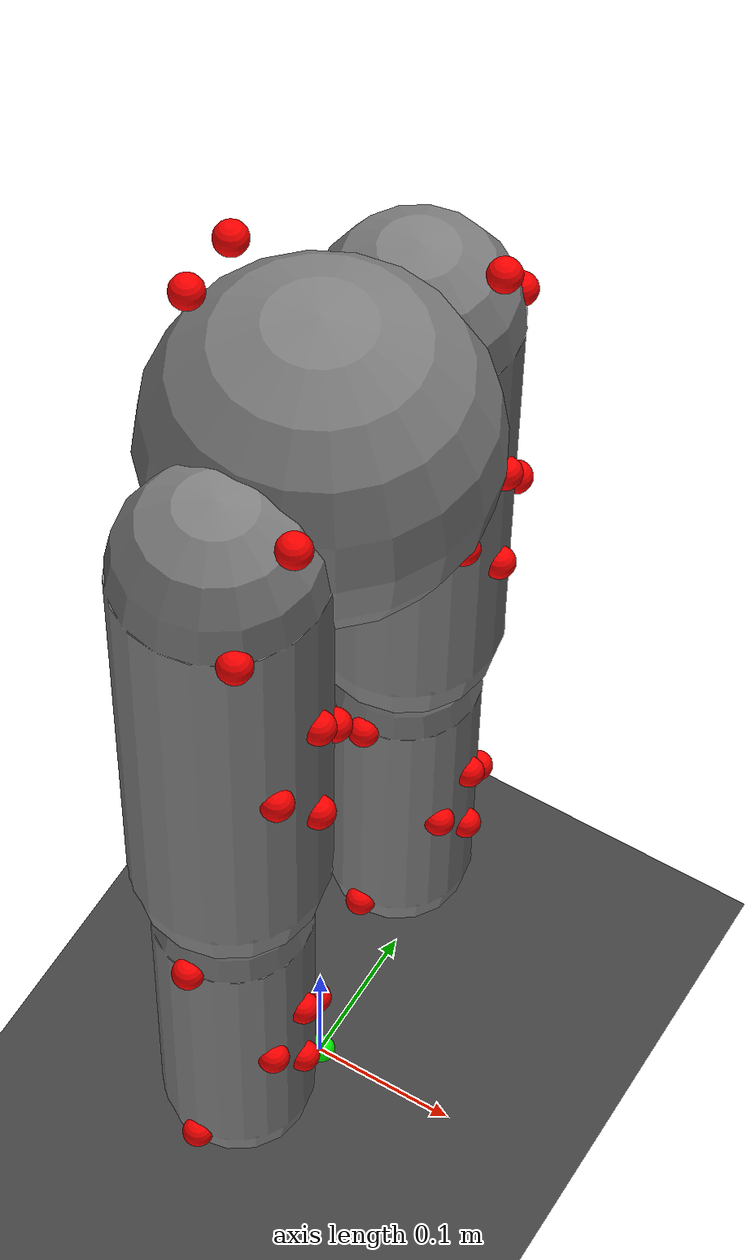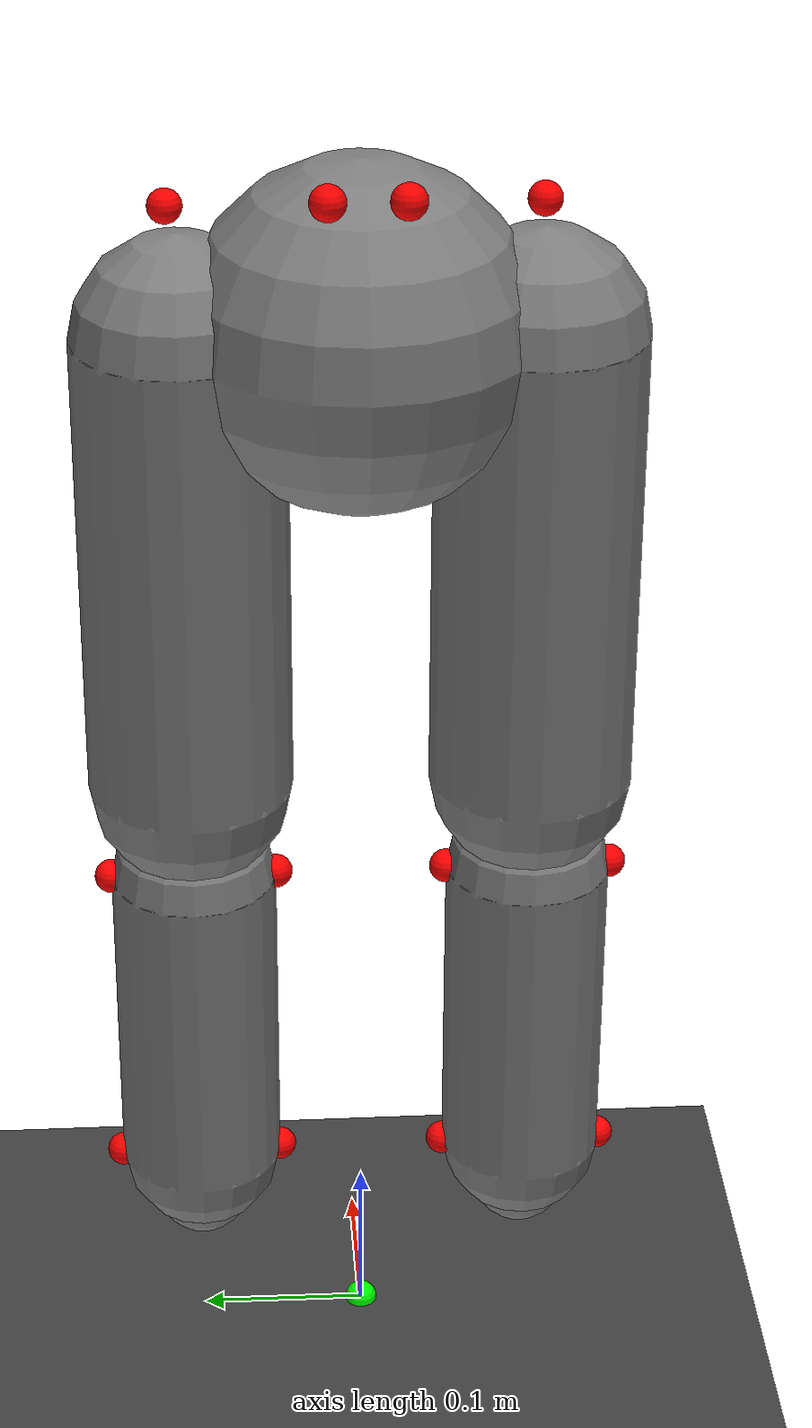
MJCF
<mujoco model="pm_mll">
  <compiler settotalmass="50.0"/>
  <default>
    <default class="/"/>
    <default class="left_leg/"/>
    <default class="right_leg/"/>
  </default>
  <asset>
    <texture name="texplane" type="2d" builtin="checker" rgb1="0.20000000000000001 0.20000000000000001 0.20000000000000001" rgb2="0.29999999999999999 0.29999999999999999 0.29999999999999999" width="512" height="512"/>
    <material name="grid" class="/" texture="texplane" texrepeat="1 1" texuniform="true" reflectance="0.0"/>
  </asset>
  <worldbody>
    <geom name="floor" class="/" type="plane" conaffinity="1" size="100 100 0.20000000000000001" material="grid" pos="0 0 0"/>
    <body name="torso" pos="0 0 0.67100000000000004">
      <light name="top" class="/" mode="trackcom" pos="0 0 2"/>
      <camera name="back" class="/" mode="trackcom" pos="-3 0 1" xyaxes="0 -1 0 1 0 2"/>
      <camera name="side" class="/" mode="trackcom" pos="0 -3 1" xyaxes="1 0 0 0 1 2"/>
      <freejoint name="root"/>
      <geom name="head" class="/" type="sphere" size="0.10000000000000001" pos="0 0 0"/>
      <site name="com" class="/" type="sphere" rgba="1 0 0 1" size="0.01" pos="0 0 0"/>
      <camera name="egocentric" class="/" fovy="80.0" pos="0.089999999999999997 0 0" xyaxes="0 -1 0 0.10000000000000001 1 2"/>
      <site name="LASI" class="/" type="sphere" rgba="1 0 0 1" size="0.01" pos="0.048943999880708008 0.10500000000000001 0.057850884871788529"/>
      <site name="LPSI" class="/" type="sphere" rgba="1 0 0 1" size="0.01" pos="-0.066488008791476927 0.021000000000000001 0.0996938565740315"/>
      <site name="RASI" class="/" type="sphere" rgba="1 0 0 1" size="0.01" pos="0.048943999880708008 -0.10500000000000001 0.057850884871788529"/>
      <site name="RPSI" class="/" type="sphere" rgba="1 0 0 1" size="0.01" pos="-0.066488008791476927 -0.021000000000000001 0.0996938565740315"/>
      <site name="left_leg_site" class="/" size="9.9999999999999995e-07 9.9999999999999995e-07 9.9999999999999995e-07" pos="0 0.10000000000000001 0"/>
      <body pos="0 0.10000000000000001 0" name="left_leg/">
        <body name="left_leg/thigh">
          <joint name="left_leg/hip_x" class="left_leg/" type="hinge" axis="1 0 0" limited="true" solimplimit="0 0.98999999999999999 0.01" range="-25 5"/>
          <joint name="left_leg/hip_y" class="left_leg/" type="hinge" axis="0 1 0" limited="true" solimplimit="0 0.98999999999999999 0.01" range="-110 20"/>
          <geom name="left_leg/thigh" class="left_leg/" type="capsule" size="0.059999999999999998" mass="1e-06" fromto="0 0 0 0 0 -0.28000000000000003"/>
          <site name="left_leg/LGT" class="left_leg/" type="sphere" rgba="1 0 0 1" size="0.01" pos="0.038567256581192359 0.045962666587138677 0"/>
          <site name="left_leg/LT1" class="left_leg/" type="sphere" rgba="1 0 0 1" size="0.01" pos="0.059999999999999998 0 -0.098000000000000004"/>
          <site name="left_leg/LT2" class="left_leg/" type="sphere" rgba="1 0 0 1" size="0.01" pos="0.051961524227066319 0.029999999999999995 -0.14000000000000001"/>
          <site name="left_leg/LT3" class="left_leg/" type="sphere" rgba="1 0 0 1" size="0.01" pos="0.059999999999999998 0 -0.18200000000000002"/>
          <site name="left_leg/LT4" class="left_leg/" type="sphere" rgba="1 0 0 1" size="0.01" pos="0.051961524227066319 -0.029999999999999995 -0.14000000000000001"/>
          <body name="left_leg/shin" pos="0 0 -0.34300000000000003">
            <joint name="left_leg/knee" class="left_leg/" type="slide" pos="0 0 0.02" axis="0 0 1" limited="true" solimplimit="0 0.98999999999999999 0.01" stiffness="0.0" range="-160 2" armature="0.01" damping="0.0"/>
            <geom name="left_leg/shin" class="left_leg/" type="capsule" size="0.049000000000000002" mass="1e-06" fromto="0 0 0 0 0 -0.20199999999999999"/>
            <site name="left_leg/LANL" class="left_leg/" type="sphere" rgba="1 0 0 1" size="0.01" pos="3.0003846579110156e-18 0.049000000000000002 -0.20199999999999999"/>
            <site name="left_leg/LANM" class="left_leg/" type="sphere" rgba="1 0 0 1" size="0.01" pos="-9.0011539737330462e-18 -0.049000000000000002 -0.20199999999999999"/>
            <site name="left_leg/LKNL" class="left_leg/" type="sphere" rgba="1 0 0 1" size="0.01" pos="3.0003846579110156e-18 0.049000000000000002 0"/>
            <site name="left_leg/LKNM" class="left_leg/" type="sphere" rgba="1 0 0 1" size="0.01" pos="-9.0011539737330462e-18 -0.049000000000000002 0"/>
            <site name="left_leg/LS1" class="left_leg/" type="sphere" rgba="1 0 0 1" size="0.01" pos="0.049000000000000002 0 -0.070699999999999999"/>
            <site name="left_leg/LS2" class="left_leg/" type="sphere" rgba="1 0 0 1" size="0.01" pos="0.042435244785437497 0.024499999999999997 -0.10099999999999999"/>
            <site name="left_leg/LS3" class="left_leg/" type="sphere" rgba="1 0 0 1" size="0.01" pos="0.049000000000000002 0 -0.1313"/>
            <site name="left_leg/LS4" class="left_leg/" type="sphere" rgba="1 0 0 1" size="0.01" pos="0.042435244785437497 -0.024499999999999997 -0.10099999999999999"/>
            <body name="left_leg/foot" pos="0 0 -0.23199999999999996">
              <geom name="left_leg/foot" class="left_leg/" type="sphere" size="0.029999999999999999" mass="0.1" pos="0 0 0"/>
              <site name="left_leg/foot" class="left_leg/" type="sphere" rgba="1 0 0 1" size="0.01" pos="0 0 0"/>
            </body>
          </body>
        </body>
      </body>
      <site name="right_leg_site" class="/" size="9.9999999999999995e-07 9.9999999999999995e-07 9.9999999999999995e-07" pos="0 -0.10000000000000001 0"/>
      <body pos="0 -0.10000000000000001 0" name="right_leg/">
        <body name="right_leg/thigh">
          <joint name="right_leg/hip_x" class="right_leg/" type="hinge" axis="1 0 0" limited="true" solimplimit="0 0.98999999999999999 0.01" range="-25 5"/>
          <joint name="right_leg/hip_y" class="right_leg/" type="hinge" axis="0 1 0" limited="true" solimplimit="0 0.98999999999999999 0.01" range="-110 20"/>
          <geom name="right_leg/thigh" class="right_leg/" type="capsule" size="0.059999999999999998" mass="1e-06" fromto="0 0 0 0 0 -0.28000000000000003"/>
          <site name="right_leg/RGT" class="right_leg/" type="sphere" rgba="1 0 0 1" size="0.01" pos="0.038567256581192352 -0.045962666587138684 0"/>
          <site name="right_leg/RT1" class="right_leg/" type="sphere" rgba="1 0 0 1" size="0.01" pos="0.059999999999999998 0 -0.098000000000000004"/>
          <site name="right_leg/RT2" class="right_leg/" type="sphere" rgba="1 0 0 1" size="0.01" pos="0.051961524227066319 0.029999999999999995 -0.14000000000000001"/>
          <site name="right_leg/RT3" class="right_leg/" type="sphere" rgba="1 0 0 1" size="0.01" pos="0.059999999999999998 0 -0.18200000000000002"/>
          <site name="right_leg/RT4" class="right_leg/" type="sphere" rgba="1 0 0 1" size="0.01" pos="0.051961524227066319 -0.029999999999999995 -0.14000000000000001"/>
          <body name="right_leg/shin" pos="0 0 -0.34300000000000003">
            <joint name="right_leg/knee" class="right_leg/" type="slide" pos="0 0 0.02" axis="0 0 1" limited="true" solimplimit="0 0.98999999999999999 0.01" stiffness="0.0" range="-160 2" armature="0.01" damping="0.0"/>
            <geom name="right_leg/shin" class="right_leg/" type="capsule" size="0.049000000000000002" mass="1e-06" fromto="0 0 0 0 0 -0.20199999999999999"/>
            <site name="right_leg/RANL" class="right_leg/" type="sphere" rgba="1 0 0 1" size="0.01" pos="3.0003846579110156e-18 0.049000000000000002 -0.20199999999999999"/>
            <site name="right_leg/RANM" class="right_leg/" type="sphere" rgba="1 0 0 1" size="0.01" pos="-9.0011539737330462e-18 -0.049000000000000002 -0.20199999999999999"/>
            <site name="right_leg/RKNL" class="right_leg/" type="sphere" rgba="1 0 0 1" size="0.01" pos="-9.0011539737330462e-18 -0.049000000000000002 0"/>
            <site name="right_leg/RKNM" class="right_leg/" type="sphere" rgba="1 0 0 1" size="0.01" pos="3.0003846579110156e-18 0.049000000000000002 0"/>
            <site name="right_leg/RS1" class="right_leg/" type="sphere" rgba="1 0 0 1" size="0.01" pos="0.049000000000000002 0 -0.070699999999999999"/>
            <site name="right_leg/RS2" class="right_leg/" type="sphere" rgba="1 0 0 1" size="0.01" pos="0.042435244785437497 0.024499999999999997 -0.10099999999999999"/>
            <site name="right_leg/RS3" class="right_leg/" type="sphere" rgba="1 0 0 1" size="0.01" pos="0.049000000000000002 0 -0.1313"/>
            <site name="right_leg/RS4" class="right_leg/" type="sphere" rgba="1 0 0 1" size="0.01" pos="0.042435244785437497 -0.024499999999999997 -0.10099999999999999"/>
            <body name="right_leg/foot" pos="0 0 -0.23199999999999996">
              <geom name="right_leg/foot" class="right_leg/" type="sphere" size="0.029999999999999999" mass="0.1" pos="0 0 0"/>
              <site name="right_leg/foot" class="right_leg/" type="sphere" rgba="1 0 0 1" size="0.01" pos="0 0 0"/>
            </body>
          </body>
        </body>
      </body>
    </body>
    <body name="m0" mocap="true" pos="0 0 0">
      <geom name="m0" class="/" type="sphere" size="0.01" rgba="0 1 0 1" mass="0.0"/>
    </body>
    <body name="m1" mocap="true" pos="0 0 0">
      <geom name="m1" class="/" type="sphere" size="0.01" rgba="0 1 0 1" mass="0.0"/>
    </body>
    <body name="m2" mocap="true" pos="0 0 0">
      <geom name="m2" class="/" type="sphere" size="0.01" rgba="0 1 0 1" mass="0.0"/>
    </body>
    <body name="m3" mocap="true" pos="0 0 0">
      <geom name="m3" class="/" type="sphere" size="0.01" rgba="0 1 0 1" mass="0.0"/>
    </body>
    <body name="m4" mocap="true" pos="0 0 0">
      <geom name="m4" class="/" type="sphere" size="0.01" rgba="0 1 0 1" mass="0.0"/>
    </body>
    <body name="m5" mocap="true" pos="0 0 0">
      <geom name="m5" class="/" type="sphere" size="0.01" rgba="0 1 0 1" mass="0.0"/>
    </body>
    <body name="m6" mocap="true" pos="0 0 0">
      <geom name="m6" class="/" type="sphere" size="0.01" rgba="0 1 0 1" mass="0.0"/>
    </body>
    <body name="m7" mocap="true" pos="0 0 0">
      <geom name="m7" class="/" type="sphere" size="0.01" rgba="0 1 0 1" mass="0.0"/>
    </body>
    <body name="m8" mocap="true" pos="0 0 0">
      <geom name="m8" class="/" type="sphere" size="0.01" rgba="0 1 0 1" mass="0.0"/>
    </body>
    <body name="m9" mocap="true" pos="0 0 0">
      <geom name="m9" class="/" type="sphere" size="0.01" rgba="0 1 0 1" mass="0.0"/>
    </body>
    <body name="m10" mocap="true" pos="0 0 0">
      <geom name="m10" class="/" type="sphere" size="0.01" rgba="0 1 0 1" mass="0.0"/>
    </body>
    <body name="m11" mocap="true" pos="0 0 0">
      <geom name="m11" class="/" type="sphere" size="0.01" rgba="0 1 0 1" mass="0.0"/>
    </body>
    <body name="m12" mocap="true" pos="0 0 0">
      <geom name="m12" class="/" type="sphere" size="0.01" rgba="0 1 0 1" mass="0.0"/>
    </body>
    <body name="m13" mocap="true" pos="0 0 0">
      <geom name="m13" class="/" type="sphere" size="0.01" rgba="0 1 0 1" mass="0.0"/>
    </body>
    <body name="m14" mocap="true" pos="0 0 0">
      <geom name="m14" class="/" type="sphere" size="0.01" rgba="0 1 0 1" mass="0.0"/>
    </body>
    <body name="m15" mocap="true" pos="0 0 0">
      <geom name="m15" class="/" type="sphere" size="0.01" rgba="0 1 0 1" mass="0.0"/>
    </body>
    <body name="m16" mocap="true" pos="0 0 0">
      <geom name="m16" class="/" type="sphere" size="0.01" rgba="0 1 0 1" mass="0.0"/>
    </body>
    <body name="m17" mocap="true" pos="0 0 0">
      <geom name="m17" class="/" type="sphere" size="0.01" rgba="0 1 0 1" mass="0.0"/>
    </body>
    <body name="m18" mocap="true" pos="0 0 0">
      <geom name="m18" class="/" type="sphere" size="0.01" rgba="0 1 0 1" mass="0.0"/>
    </body>
    <body name="m19" mocap="true" pos="0 0 0">
      <geom name="m19" class="/" type="sphere" size="0.01" rgba="0 1 0 1" mass="0.0"/>
    </body>
    <body name="m20" mocap="true" pos="0 0 0">
      <geom name="m20" class="/" type="sphere" size="0.01" rgba="0 1 0 1" mass="0.0"/>
    </body>
    <body name="m21" mocap="true" pos="0 0 0">
      <geom name="m21" class="/" type="sphere" size="0.01" rgba="0 1 0 1" mass="0.0"/>
    </body>
    <body name="m22" mocap="true" pos="0 0 0">
      <geom name="m22" class="/" type="sphere" size="0.01" rgba="0 1 0 1" mass="0.0"/>
    </body>
    <body name="m23" mocap="true" pos="0 0 0">
      <geom name="m23" class="/" type="sphere" size="0.01" rgba="0 1 0 1" mass="0.0"/>
    </body>
    <body name="m24" mocap="true" pos="0 0 0">
      <geom name="m24" class="/" type="sphere" size="0.01" rgba="0 1 0 1" mass="0.0"/>
    </body>
    <body name="m25" mocap="true" pos="0 0 0">
      <geom name="m25" class="/" type="sphere" size="0.01" rgba="0 1 0 1" mass="0.0"/>
    </body>
    <body name="m26" mocap="true" pos="0 0 0">
      <geom name="m26" class="/" type="sphere" size="0.01" rgba="0 1 0 1" mass="0.0"/>
    </body>
    <body name="m27" mocap="true" pos="0 0 0">
      <geom name="m27" class="/" type="sphere" size="0.01" rgba="0 1 0 1" mass="0.0"/>
    </body>
    <body name="m28" mocap="true" pos="0 0 0">
      <geom name="m28" class="/" type="sphere" size="0.01" rgba="0 1 0 1" mass="0.0"/>
    </body>
    <body name="m29" mocap="true" pos="0 0 0">
      <geom name="m29" class="/" type="sphere" size="0.01" rgba="0 1 0 1" mass="0.0"/>
    </body>
    <body name="m30" mocap="true" pos="0 0 0">
      <geom name="m30" class="/" type="sphere" size="0.01" rgba="0 1 0 1" mass="0.0"/>
    </body>
    <body name="m31" mocap="true" pos="0 0 0">
      <geom name="m31" class="/" type="sphere" size="0.01" rgba="0 1 0 1" mass="0.0"/>
    </body>
    <body name="m32" mocap="true" pos="0 0 0">
      <geom name="m32" class="/" type="sphere" size="0.01" rgba="0 1 0 1" mass="0.0"/>
    </body>
    <body name="m33" mocap="true" pos="0 0 0">
      <geom name="m33" class="/" type="sphere" size="0.01" rgba="0 1 0 1" mass="0.0"/>
    </body>
    <body name="m34" mocap="true" pos="0 0 0">
      <geom name="m34" class="/" type="sphere" size="0.01" rgba="0 1 0 1" mass="0.0"/>
    </body>
    <body name="m35" mocap="true" pos="0 0 0">
      <geom name="m35" class="/" type="sphere" size="0.01" rgba="0 1 0 1" mass="0.0"/>
    </body>
    <body name="m36" mocap="true" pos="0 0 0">
      <geom name="m36" class="/" type="sphere" size="0.01" rgba="0 1 0 1" mass="0.0"/>
    </body>
    <body name="m37" mocap="true" pos="0 0 0">
      <geom name="m37" class="/" type="sphere" size="0.01" rgba="0 1 0 1" mass="0.0"/>
    </body>
    <body name="m38" mocap="true" pos="0 0 0">
      <geom name="m38" class="/" type="sphere" size="0.01" rgba="0 1 0 1" mass="0.0"/>
    </body>
    <body name="m39" mocap="true" pos="0 0 0">
      <geom name="m39" class="/" type="sphere" size="0.01" rgba="0 1 0 1" mass="0.0"/>
    </body>
  </worldbody>
  <equality>
    <weld name="world_root" class="/" active="false" body1="torso" relpose="0 0 -2 1 0 0 0"/>
  </equality>
  <actuator>
    <motor name="left_leg/hip_x" class="left_leg/" joint="left_leg/hip_x"/>
    <motor name="left_leg/hip_y" class="left_leg/" joint="left_leg/hip_y"/>
    <motor name="left_leg/knee" class="left_leg/" joint="left_leg/knee"/>
    <motor name="right_leg/hip_x" class="right_leg/" joint="right_leg/hip_x"/>
    <motor name="right_leg/hip_y" class="right_leg/" joint="right_leg/hip_y"/>
    <motor name="right_leg/knee" class="right_leg/" joint="right_leg/knee"/>
  </actuator>
</mujoco>
